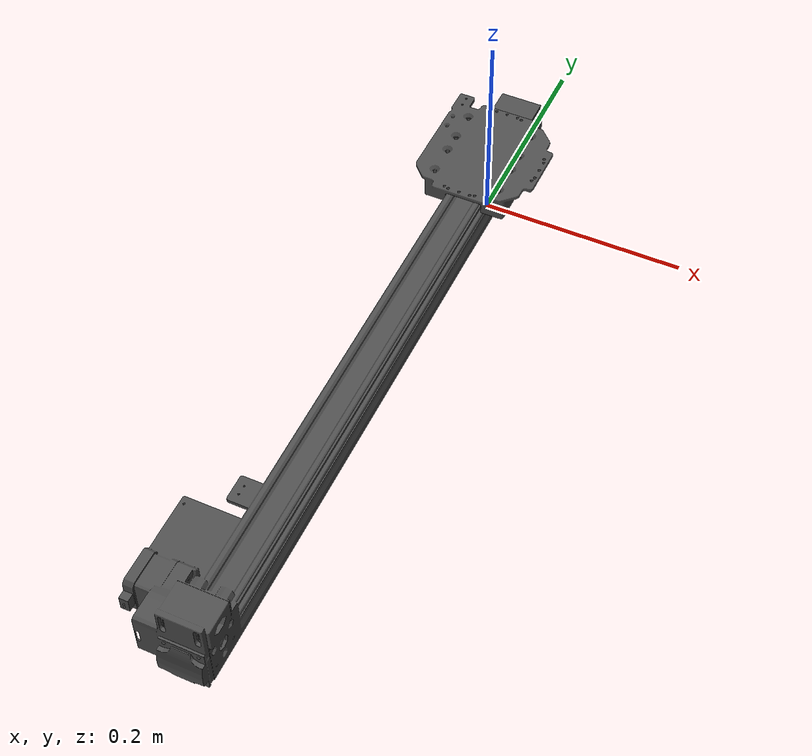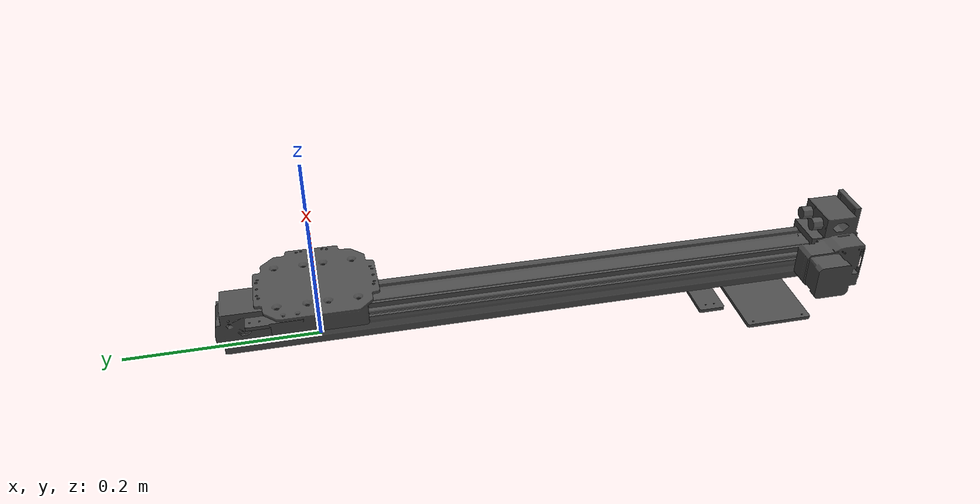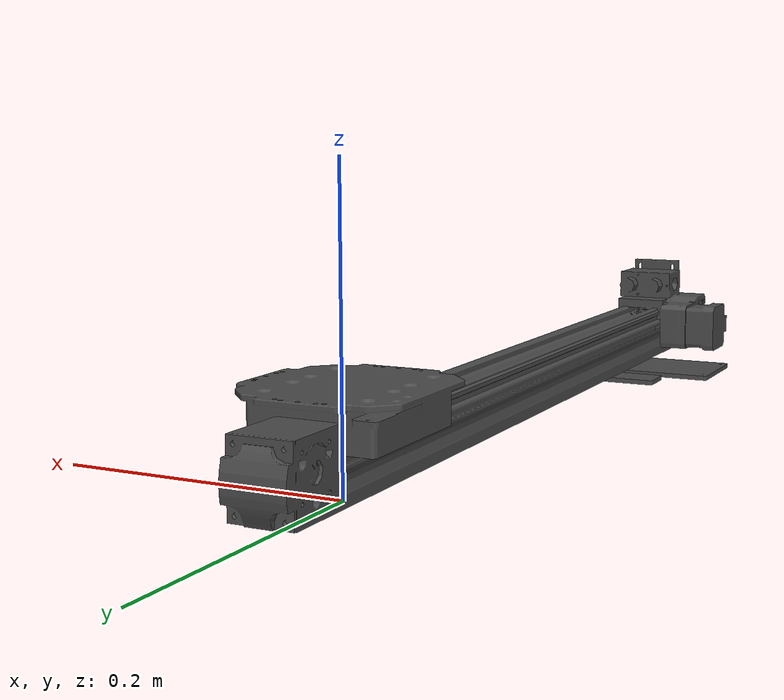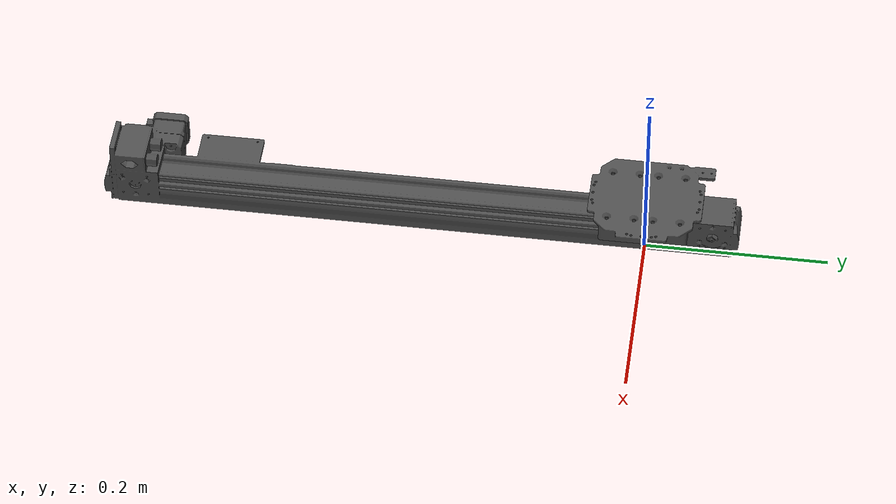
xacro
<?xml version="1.0"?>
<robot xmlns:xacro="http://www.ros.org/wiki/xacro" name="slider">

<link name="world"/>

  <joint name="fixed" type="fixed">
    <origin xyz = "0 0 0.012755" rpy = "0 0 0"/>
    <parent link="world"/>
    <child link="Base"/>
  </joint>
<link name="Base">
    <static>true</static>
	<inertial>
		<origin xyz="0 0.0 0.01" rpy="1.570796327 0 0"/>
		<mass value="4"/>
		<inertia ixx="0.15" ixy="0.0" ixz="0.0"
				 iyy="0.15" iyz="0.0"  izz="0.15"/>
	</inertial>
	<visual>
		<geometry>
			<mesh filename="package://slider/urdf/STL-Files/slider_description/linearschiene.STL" scale="0.00092 0.00092 0.00092"/>
		</geometry>
		<origin xyz = "0 0.2869 0.02" rpy = "1.570796327 0 0"/>
		<material name = "">
			<color rgba = "0.3 0.3 0.3 1" />
		</material>
    </visual>
    <collision>
		<origin xyz = "0 0.2869 0.02" rpy = "1.570796327 0 0"/>
		<geometry>
			<mesh filename="package://slider/urdf/STL-Files/slider_description/linearschiene.STL" scale="0.00092 0.00092 0.00092"/>
		</geometry>
    </collision>
</link>

<gazebo reference="Base">
    <material>Gazebo/Grey</material>
    <mu1>0.0</mu1>
    <mu2>0.0</mu2>
</gazebo>

<link name="wagen">
	<inertial>
		<origin xyz="0 0.735 0.022" rpy="1.570796327 0 0"/>
		<mass value="0.6"/>
		<inertia ixx="0.001" ixy="0.0" ixz="0.0"
				 iyy="0.001" iyz="0.0" izz="0.001"/>
	</inertial>
	<visual>
		<geometry>
			<mesh filename="package://slider/urdf/STL-Files/slider_description/wagen.STL" scale="0.00092 0.00092 0.00092"/>
		</geometry>
		<origin xyz = "0 0.735 0.022" rpy = "1.570796327 0 0" />
		<material name = "">
			<color rgba = "0.3 0.3 0.3 1" />
		</material>
    </visual>
    <collision>
        <origin xyz = "0 0.735 0.022" rpy = "1.570796327 0 0" />
		<geometry>
			<mesh filename="package://slider/urdf/STL-Files/slider_description/wagen.STL" scale="0.00092 0.00092 0.00092"/>
		</geometry>
      <surface>
        <contact>
            <ode>
              <mu1>100.0</mu1>
              <mu1>100.0</mu1>
              <kp>1e15</kp>
              <kd>1e13</kd>
            </ode>
          </contact>
      </surface>
    </collision>
</link>

<gazebo reference="wagen">
    <material>Gazebo/Grey</material>
    <mu1>1000.0</mu1>
    <mu2>1000.0</mu2>
</gazebo>

<joint name="Joint_slide" type="prismatic">
	<axis xyz="0 1 0"/>
	<limit effort = "1.0" lower="-0.47" upper="0" velocity="0.1" />
    <dynamics damping="1.4" friction="0"/>
    <parent link="Base"/>
    <child link="wagen"/>
	<origin xyz= "0 0 0.0" rpy = " 0 0 0" />
</joint>

<transmission name="joint_slide_trans">
  <type>transmission_interface/SimpleTransmission</type>
  <actuator name="$joint_slide_motor">
    <mechanicalReduction>1</mechanicalReduction>
  </actuator>
  <joint name="Joint_slide">
    <hardwareInterface>hardware_interface/EffortJointInterface</hardwareInterface>
  </joint>
</transmission>

<gazebo>
  <plugin name="gazebo_ros_control" filename="libgazebo_ros_control.so">
  </plugin>
   <kp>1000000.0</kp>
   <kd>1.0</kd>
   <mu1>100.0</mu1>
   <mu2>100.0</mu2>
   <maxVel>0.1</maxVel>
   <minDepth>0.001</minDepth>

</gazebo>
</robot>
